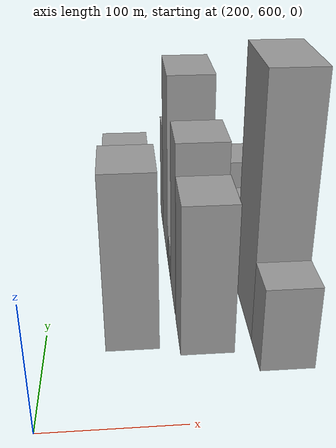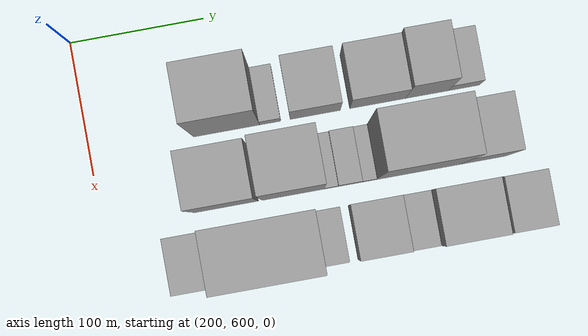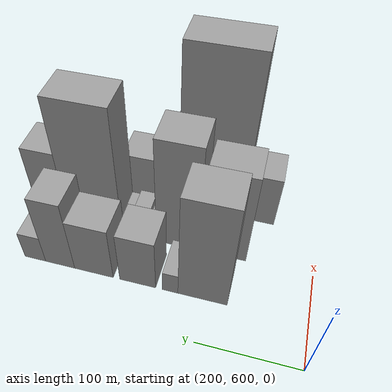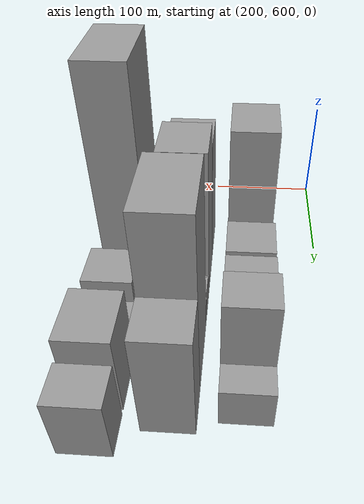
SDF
<sdf version="1.6">
 <world name="default">
  <model name="building_199">
   <static>1</static>
   <pose>265.0000 702.4014 0 0.000000 0.000000 0.000000</pose>
   <link name="link">
    <pose>0 0 72.00 0 0 0</pose>
    <collision name="collision"><geometry><box><size>40.0000 49.2511 144.0000</size></box></geometry></collision>
    <visual name="visual">
     <cast_shadows>0</cast_shadows>
     <geometry><box><size>40.0000 49.2511 144.0000</size></box></geometry>
     <material>
      <script>
       <uri>model://grey_wall/materials/scripts</uri>
       <uri>model://grey_wall/materials/textures</uri>
       <name>vrc/grey_wall</name>
      </script>
     </material>
    </visual>
   </link>
  </model>
  <model name="building_200">
   <static>1</static>
   <pose>265.0000 734.8977 0 0.000000 0.000000 0.000000</pose>
   <link name="link">
    <pose>0 0 15.00 0 0 0</pose>
    <collision name="collision"><geometry><box><size>40.0000 15.7416 30.0000</size></box></geometry></collision>
    <visual name="visual">
     <cast_shadows>0</cast_shadows>
     <geometry><box><size>40.0000 15.7416 30.0000</size></box></geometry>
     <material>
      <script>
       <uri>model://grey_wall/materials/scripts</uri>
       <uri>model://grey_wall/materials/textures</uri>
       <name>vrc/grey_wall</name>
      </script>
     </material>
    </visual>
   </link>
  </model>
  <model name="building_201">
   <static>1</static>
   <pose>265.0000 768.5330 0 0.000000 0.000000 0.000000</pose>
   <link name="link">
    <pose>0 0 36.00 0 0 0</pose>
    <collision name="collision"><geometry><box><size>40.0000 37.5289 72.0000</size></box></geometry></collision>
    <visual name="visual">
     <cast_shadows>0</cast_shadows>
     <geometry><box><size>40.0000 37.5289 72.0000</size></box></geometry>
     <material>
      <script>
       <uri>model://grey_wall/materials/scripts</uri>
       <uri>model://grey_wall/materials/textures</uri>
       <name>vrc/grey_wall</name>
      </script>
     </material>
    </visual>
   </link>
  </model>
  <model name="building_202">
   <static>1</static>
   <pose>265.0000 815.1306 0 0.000000 0.000000 0.000000</pose>
   <link name="link">
    <pose>0 0 37.50 0 0 0</pose>
    <collision name="collision"><geometry><box><size>40.0000 41.6664 75.0000</size></box></geometry></collision>
    <visual name="visual">
     <cast_shadows>0</cast_shadows>
     <geometry><box><size>40.0000 41.6664 75.0000</size></box></geometry>
     <material>
      <script>
       <uri>model://grey_wall/materials/scripts</uri>
       <uri>model://grey_wall/materials/textures</uri>
       <name>vrc/grey_wall</name>
      </script>
     </material>
    </visual>
   </link>
  </model>
  <model name="building_203">
   <static>1</static>
   <pose>265.0000 852.0621 0 0.000000 0.000000 0.000000</pose>
   <link name="link">
    <pose>0 0 49.50 0 0 0</pose>
    <collision name="collision"><geometry><box><size>40.0000 32.1965 99.0000</size></box></geometry></collision>
    <visual name="visual">
     <cast_shadows>0</cast_shadows>
     <geometry><box><size>40.0000 32.1965 99.0000</size></box></geometry>
     <material>
      <script>
       <uri>model://grey_wall/materials/scripts</uri>
       <uri>model://grey_wall/materials/textures</uri>
       <name>vrc/grey_wall</name>
      </script>
     </material>
    </visual>
   </link>
  </model>
  <model name="building_204">
   <static>1</static>
   <pose>265.0000 879.8087 0 0.000000 0.000000 0.000000</pose>
   <link name="link">
    <pose>0 0 19.50 0 0 0</pose>
    <collision name="collision"><geometry><box><size>40.0000 23.2968 39.0000</size></box></geometry></collision>
    <visual name="visual">
     <cast_shadows>0</cast_shadows>
     <geometry><box><size>40.0000 23.2968 39.0000</size></box></geometry>
     <material>
      <script>
       <uri>model://grey_wall/materials/scripts</uri>
       <uri>model://grey_wall/materials/textures</uri>
       <name>vrc/grey_wall</name>
      </script>
     </material>
    </visual>
   </link>
  </model>
  <model name="building_250">
   <static>1</static>
   <pose>320.0000 692.5219 0 0.000000 0.000000 0.000000</pose>
   <link name="link">
    <pose>0 0 61.50 0 0 0</pose>
    <collision name="collision"><geometry><box><size>40.0000 47.2896 123.0000</size></box></geometry></collision>
    <visual name="visual">
     <cast_shadows>0</cast_shadows>
     <geometry><box><size>40.0000 47.2896 123.0000</size></box></geometry>
     <material>
      <script>
       <uri>model://grey_wall/materials/scripts</uri>
       <uri>model://grey_wall/materials/textures</uri>
       <name>vrc/grey_wall</name>
      </script>
     </material>
    </visual>
   </link>
  </model>
  <model name="building_251">
   <static>1</static>
   <pose>320.0000 742.1125 0 0.000000 0.000000 0.000000</pose>
   <link name="link">
    <pose>0 0 73.50 0 0 0</pose>
    <collision name="collision"><geometry><box><size>40.0000 45.8917 147.0000</size></box></geometry></collision>
    <visual name="visual">
     <cast_shadows>0</cast_shadows>
     <geometry><box><size>40.0000 45.8917 147.0000</size></box></geometry>
     <material>
      <script>
       <uri>model://grey_wall/materials/scripts</uri>
       <uri>model://grey_wall/materials/textures</uri>
       <name>vrc/grey_wall</name>
      </script>
     </material>
    </visual>
   </link>
  </model>
  <model name="building_252">
   <static>1</static>
   <pose>320.0000 770.2462 0 0.000000 0.000000 0.000000</pose>
   <link name="link">
    <pose>0 0 10.50 0 0 0</pose>
    <collision name="collision"><geometry><box><size>40.0000 10.3757 21.0000</size></box></geometry></collision>
    <visual name="visual">
     <cast_shadows>0</cast_shadows>
     <geometry><box><size>40.0000 10.3757 21.0000</size></box></geometry>
     <material>
      <script>
       <uri>model://grey_wall/materials/scripts</uri>
       <uri>model://grey_wall/materials/textures</uri>
       <name>vrc/grey_wall</name>
      </script>
     </material>
    </visual>
   </link>
  </model>
  <model name="building_253">
   <static>1</static>
   <pose>320.0000 784.2180 0 0.000000 0.000000 0.000000</pose>
   <link name="link">
    <pose>0 0 15.00 0 0 0</pose>
    <collision name="collision"><geometry><box><size>40.0000 17.5679 30.0000</size></box></geometry></collision>
    <visual name="visual">
     <cast_shadows>0</cast_shadows>
     <geometry><box><size>40.0000 17.5679 30.0000</size></box></geometry>
     <material>
      <script>
       <uri>model://grey_wall/materials/scripts</uri>
       <uri>model://grey_wall/materials/textures</uri>
       <name>vrc/grey_wall</name>
      </script>
     </material>
    </visual>
   </link>
  </model>
  <model name="building_254">
   <static>1</static>
   <pose>320.0000 798.3259 0 0.000000 0.000000 0.000000</pose>
   <link name="link">
    <pose>0 0 12.00 0 0 0</pose>
    <collision name="collision"><geometry><box><size>40.0000 10.6478 24.0000</size></box></geometry></collision>
    <visual name="visual">
     <cast_shadows>0</cast_shadows>
     <geometry><box><size>40.0000 10.6478 24.0000</size></box></geometry>
     <material>
      <script>
       <uri>model://grey_wall/materials/scripts</uri>
       <uri>model://grey_wall/materials/textures</uri>
       <name>vrc/grey_wall</name>
      </script>
     </material>
    </visual>
   </link>
  </model>
  <model name="building_255">
   <static>1</static>
   <pose>320.0000 834.7496 0 0.000000 0.000000 0.000000</pose>
   <link name="link">
    <pose>0 0 85.50 0 0 0</pose>
    <collision name="collision"><geometry><box><size>40.0000 62.1997 171.0000</size></box></geometry></collision>
    <visual name="visual">
     <cast_shadows>0</cast_shadows>
     <geometry><box><size>40.0000 62.1997 171.0000</size></box></geometry>
     <material>
      <script>
       <uri>model://grey_wall/materials/scripts</uri>
       <uri>model://grey_wall/materials/textures</uri>
       <name>vrc/grey_wall</name>
      </script>
     </material>
    </visual>
   </link>
  </model>
  <model name="building_256">
   <static>1</static>
   <pose>320.0000 883.3213 0 0.000000 0.000000 0.000000</pose>
   <link name="link">
    <pose>0 0 51.00 0 0 0</pose>
    <collision name="collision"><geometry><box><size>40.0000 34.9436 102.0000</size></box></geometry></collision>
    <visual name="visual">
     <cast_shadows>0</cast_shadows>
     <geometry><box><size>40.0000 34.9436 102.0000</size></box></geometry>
     <material>
      <script>
       <uri>model://grey_wall/materials/scripts</uri>
       <uri>model://grey_wall/materials/textures</uri>
       <name>vrc/grey_wall</name>
      </script>
     </material>
    </visual>
   </link>
  </model>
  <model name="building_299">
   <static>1</static>
   <pose>375.0000 664.5869 0 0.000000 0.000000 0.000000</pose>
   <link name="link">
    <pose>0 0 34.50 0 0 0</pose>
    <collision name="collision"><geometry><box><size>40.0000 34.8948 69.0000</size></box></geometry></collision>
    <visual name="visual">
     <cast_shadows>0</cast_shadows>
     <geometry><box><size>40.0000 34.8948 69.0000</size></box></geometry>
     <material>
      <script>
       <uri>model://grey_wall/materials/scripts</uri>
       <uri>model://grey_wall/materials/textures</uri>
       <name>vrc/grey_wall</name>
      </script>
     </material>
    </visual>
   </link>
  </model>
  <model name="building_300">
   <static>1</static>
   <pose>375.0000 718.3546 0 0.000000 0.000000 0.000000</pose>
   <link name="link">
    <pose>0 0 105.00 0 0 0</pose>
    <collision name="collision"><geometry><box><size>40.0000 72.6407 210.0000</size></box></geometry></collision>
    <visual name="visual">
     <cast_shadows>0</cast_shadows>
     <geometry><box><size>40.0000 72.6407 210.0000</size></box></geometry>
     <material>
      <script>
       <uri>model://grey_wall/materials/scripts</uri>
       <uri>model://grey_wall/materials/textures</uri>
       <name>vrc/grey_wall</name>
      </script>
     </material>
    </visual>
   </link>
  </model>
  <model name="building_301">
   <static>1</static>
   <pose>375.0000 763.9782 0 0.000000 0.000000 0.000000</pose>
   <link name="link">
    <pose>0 0 18.00 0 0 0</pose>
    <collision name="collision"><geometry><box><size>40.0000 18.6065 36.0000</size></box></geometry></collision>
    <visual name="visual">
     <cast_shadows>0</cast_shadows>
     <geometry><box><size>40.0000 18.6065 36.0000</size></box></geometry>
     <material>
      <script>
       <uri>model://grey_wall/materials/scripts</uri>
       <uri>model://grey_wall/materials/textures</uri>
       <name>vrc/grey_wall</name>
      </script>
     </material>
    </visual>
   </link>
  </model>
  <model name="building_302">
   <static>1</static>
   <pose>375.0000 798.8976 0 0.000000 0.000000 0.000000</pose>
   <link name="link">
    <pose>0 0 31.50 0 0 0</pose>
    <collision name="collision"><geometry><box><size>40.0000 37.2323 63.0000</size></box></geometry></collision>
    <visual name="visual">
     <cast_shadows>0</cast_shadows>
     <geometry><box><size>40.0000 37.2323 63.0000</size></box></geometry>
     <material>
      <script>
       <uri>model://grey_wall/materials/scripts</uri>
       <uri>model://grey_wall/materials/textures</uri>
       <name>vrc/grey_wall</name>
      </script>
     </material>
    </visual>
   </link>
  </model>
  <model name="building_303">
   <static>1</static>
   <pose>375.0000 828.2614 0 0.000000 0.000000 0.000000</pose>
   <link name="link">
    <pose>0 0 21.00 0 0 0</pose>
    <collision name="collision"><geometry><box><size>40.0000 21.4951 42.0000</size></box></geometry></collision>
    <visual name="visual">
     <cast_shadows>0</cast_shadows>
     <geometry><box><size>40.0000 21.4951 42.0000</size></box></geometry>
     <material>
      <script>
       <uri>model://grey_wall/materials/scripts</uri>
       <uri>model://grey_wall/materials/textures</uri>
       <name>vrc/grey_wall</name>
      </script>
     </material>
    </visual>
   </link>
  </model>
  <model name="building_304">
   <static>1</static>
   <pose>375.0000 862.0959 0 0.000000 0.000000 0.000000</pose>
   <link name="link">
    <pose>0 0 39.00 0 0 0</pose>
    <collision name="collision"><geometry><box><size>40.0000 46.1740 78.0000</size></box></geometry></collision>
    <visual name="visual">
     <cast_shadows>0</cast_shadows>
     <geometry><box><size>40.0000 46.1740 78.0000</size></box></geometry>
     <material>
      <script>
       <uri>model://grey_wall/materials/scripts</uri>
       <uri>model://grey_wall/materials/textures</uri>
       <name>vrc/grey_wall</name>
      </script>
     </material>
    </visual>
   </link>
  </model>
  <model name="building_305">
   <static>1</static>
   <pose>375.0000 904.8622 0 0.000000 0.000000 0.000000</pose>
   <link name="link">
    <pose>0 0 30.00 0 0 0</pose>
    <collision name="collision"><geometry><box><size>40.0000 31.3587 60.0000</size></box></geometry></collision>
    <visual name="visual">
     <cast_shadows>0</cast_shadows>
     <geometry><box><size>40.0000 31.3587 60.0000</size></box></geometry>
     <material>
      <script>
       <uri>model://grey_wall/materials/scripts</uri>
       <uri>model://grey_wall/materials/textures</uri>
       <name>vrc/grey_wall</name>
      </script>
     </material>
    </visual>
   </link>
  </model>
 </world>
</sdf>
